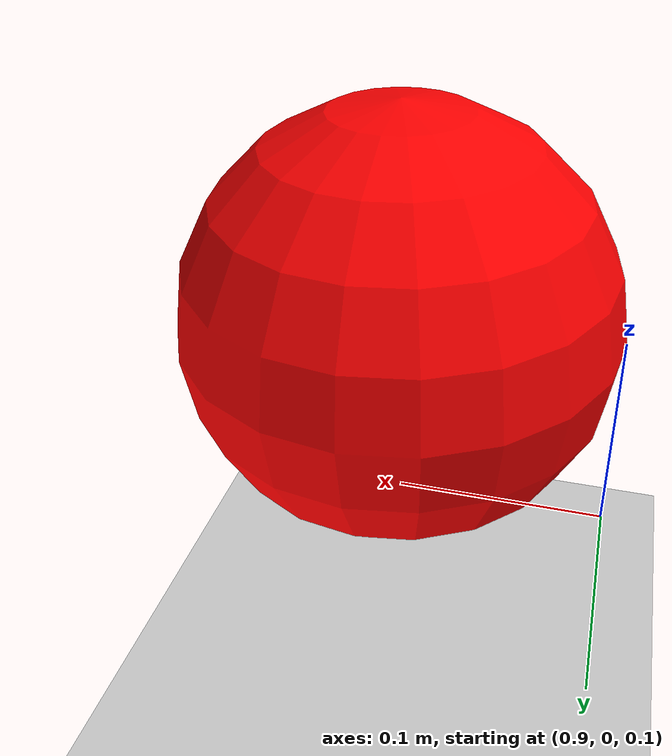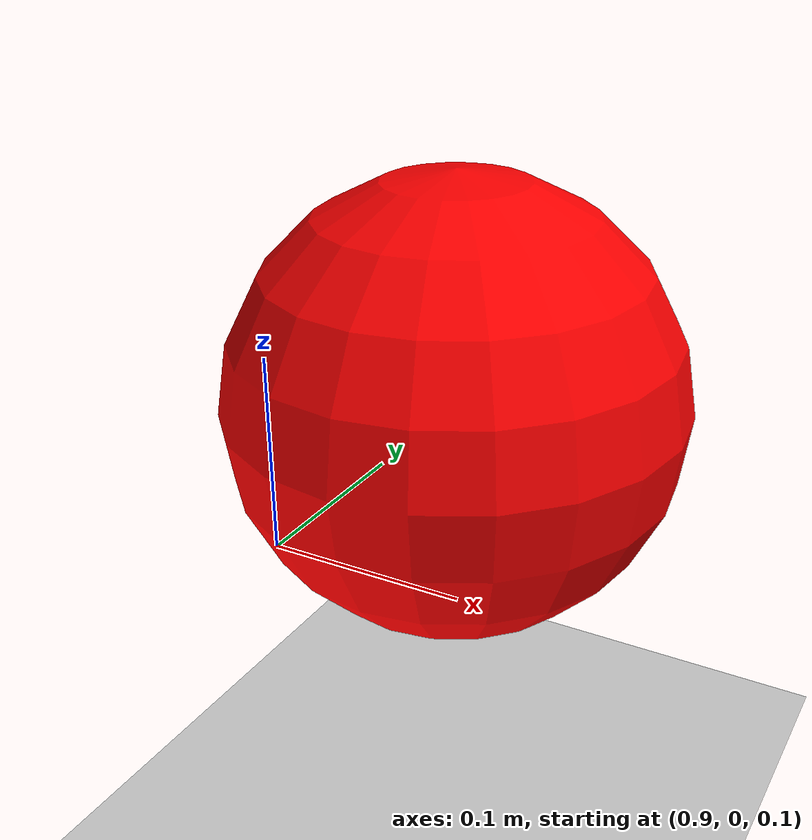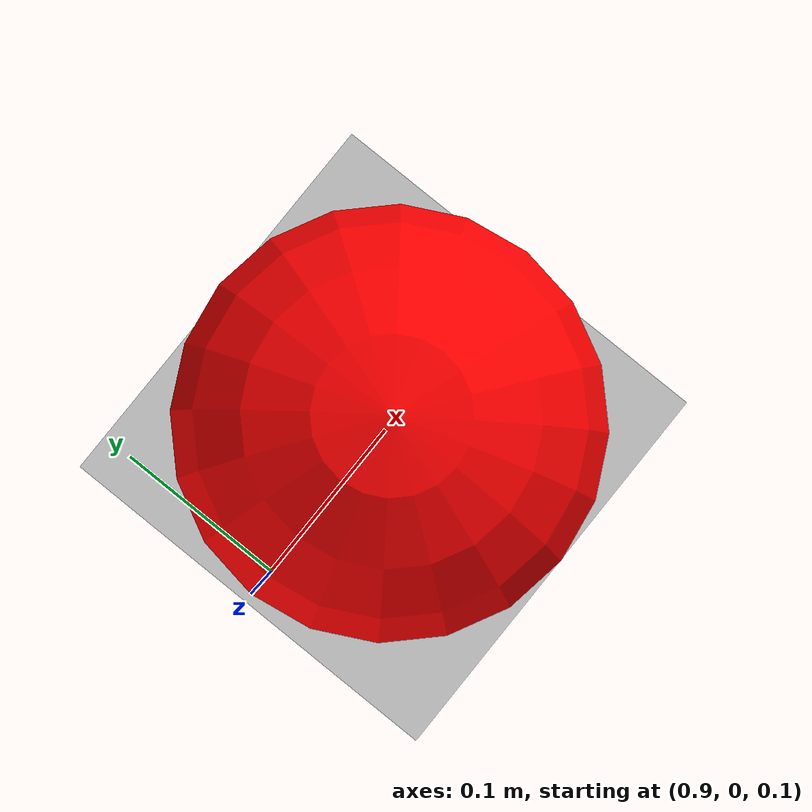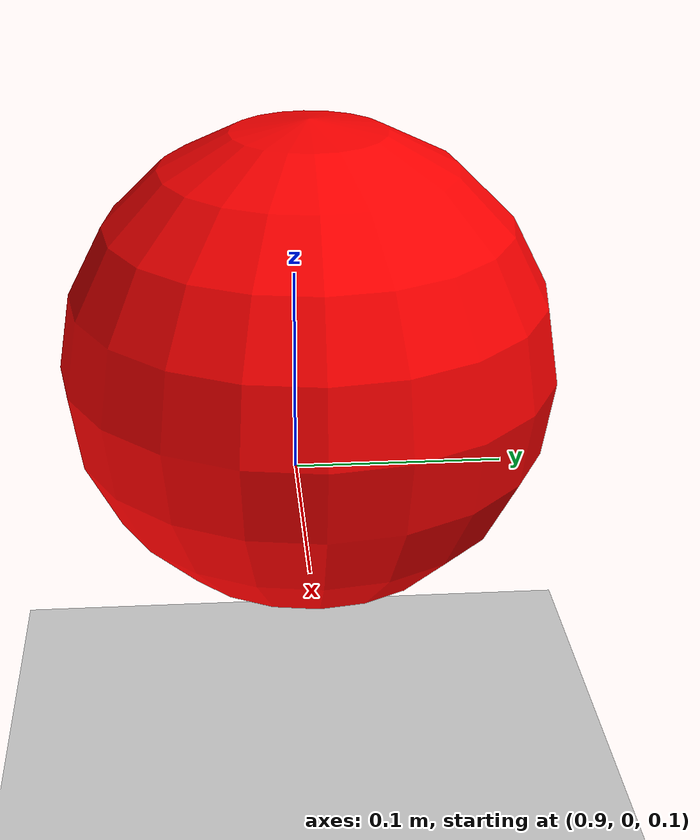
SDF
<?xml version="1.0"?>
<sdf version="1.7">
    <world name="empty">
        <physics name="1ms" type="ignored">
            <max_step_size>0.001</max_step_size>
            <real_time_factor>1.0</real_time_factor>
        </physics>
        <plugin
            filename="gz-sim-physics-system"
            name="gz::sim::systems::Physics">
        </plugin>
        <plugin
            filename="gz-sim-user-commands-system"
            name="gz::sim::systems::UserCommands">
        </plugin>
        <plugin
            filename="gz-sim-scene-broadcaster-system"
            name="gz::sim::systems::SceneBroadcaster">
        </plugin>
        <plugin
            filename="gz-sim-contact-system"
            name="gz::sim::systems::Contact">
        </plugin>

        <light type="directional" name="sun">
            <cast_shadows>true</cast_shadows>
            <pose>0 0 10 0 0 0</pose>
            <diffuse>0.8 0.8 0.8 1</diffuse>
            <specular>0.2 0.2 0.2 1</specular>
            <attenuation>
                <range>1000</range>
                <constant>0.9</constant>
                <linear>0.01</linear>
                <quadratic>0.001</quadratic>
            </attenuation>
            <direction>-0.5 0.1 -0.9</direction>
        </light>

        <model name="ball">
            <static>true</static>
            <link name="ball">
                <inertial>
                    <mass>1</mass>
                    <inertia>
                        <ixx>1</ixx>
                        <ixy>0</ixy>
                        <ixz>0</ixz>
                        <iyy>1</iyy>
                        <iyz>0</iyz>
                        <izz>1</izz>
                    </inertia>
                </inertial>
                <collision name="collision">
                    <geometry>
                        <sphere>
                            <radius>0.1</radius>
                        </sphere>
                    </geometry>
                </collision>
                <visual name="visual">
                    <geometry>
                        <sphere>
                            <radius>0.1</radius>
                        </sphere>
                    </geometry>
                    <material>
                        <ambient>1 0 0 1</ambient>
                        <diffuse>1 0 0 1</diffuse>
                        <specular>1 0 0 1</specular>
                    </material>
                </visual>
                <pose>1 0 0.2 0 0 0</pose>
            </link>
        </model>

        <model name="ground_plane">
            <static>true</static>
            <link name="link">
                <collision name="collision">
                    <geometry>
                        <plane>
                            <normal>0 0 1</normal>
                            <size>100 100</size>
                        </plane>
                    </geometry>
                </collision>
                <visual name="visual">
                    <geometry>
                        <plane>
                            <normal>0 0 1</normal>
                            <size>100 100</size>
                        </plane>
                    </geometry>
                    <material>
                        <ambient>0.8 0.8 0.8 1</ambient>
                        <diffuse>0.8 0.8 0.8 1</diffuse>
                        <specular>0.8 0.8 0.8 1</specular>
                    </material>
                </visual>
            </link>
        </model>
    </world>
</sdf>
